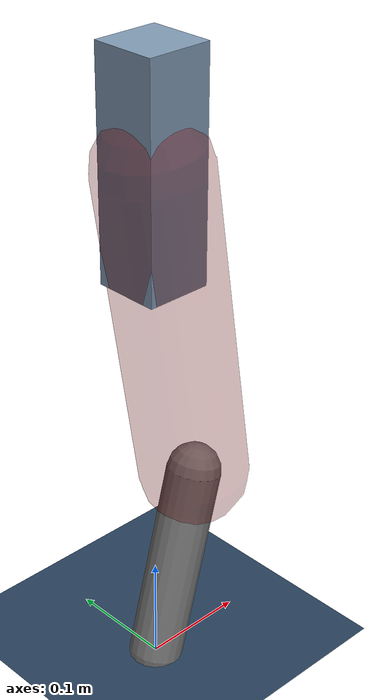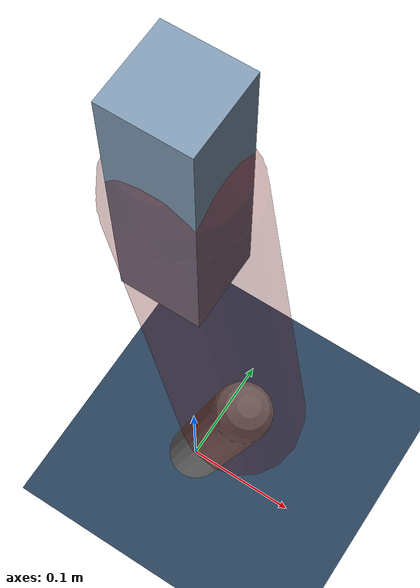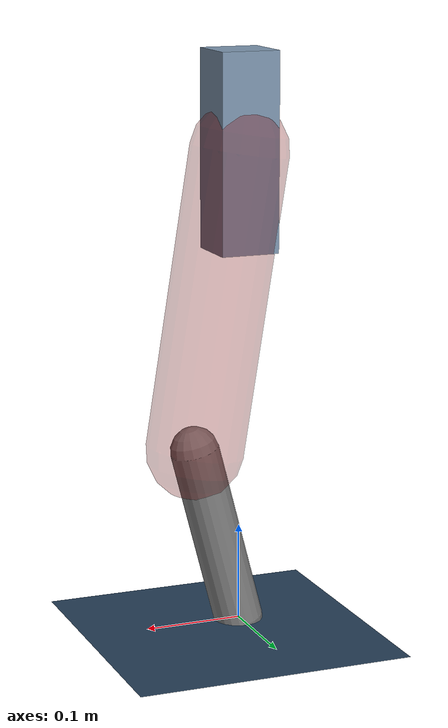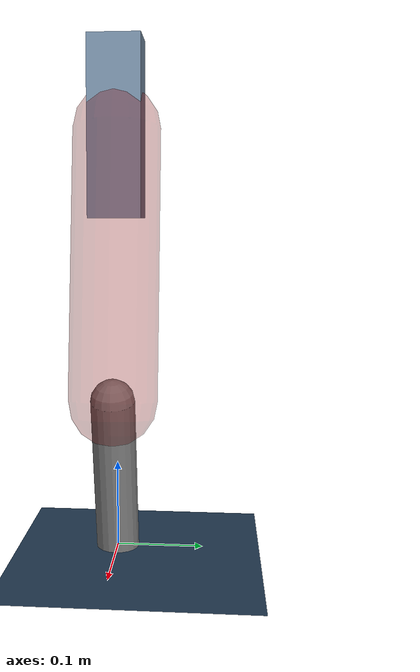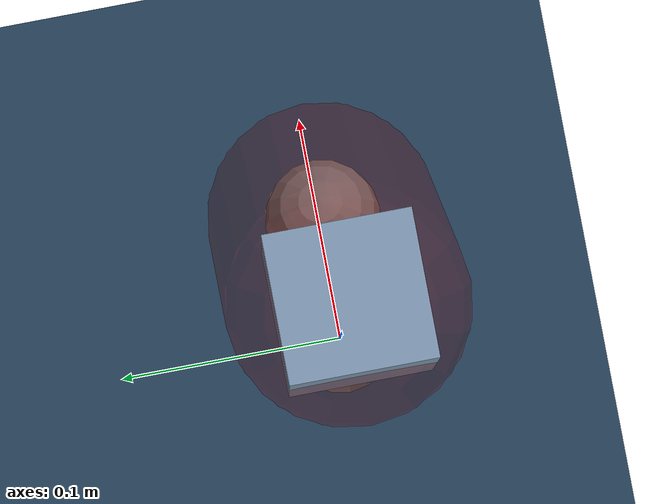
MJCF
<mujoco model="Hopper2D">
	<compiler inertiafromgeom="true" angle="radian" />
	<option timestep="0.001" integrator="implicit" cone="elliptic" solver="Newton" tolerance="1e-10" />

	<default>
		<geom contype="1" conaffinity="1" condim="3" friction="2 0.005 0.0001" solref="0.005 1" />
		<joint limited="true" damping="0.1" />
	</default>

	<asset>
		<texture name="skybox" type="skybox" builtin="gradient" rgb1=".4 .6 .8" rgb2="0 0 0" width="800" height="800" />
		<texture name="grid" type="2d" builtin="checker" rgb1=".1 .2 .3" rgb2=".2 .3 .4" width="300" height="300" mark="edge" markrgb=".2 .3 .4" />
		<material name="ground" texture="grid" texrepeat="1 1" texuniform="true" reflectance="0.1" />
		<material name="leg" rgba="0.5 0.6 0.7 1" />
	</asset>

	<worldbody>

		<geom name="floor" type="plane" size="5 5 0.25" material="ground" />

		<light directional="false" diffuse="0.8 0.8 0.8" specular="0.3 0.3 0.3" pos="0 0 2" dir="0 0 -1" />
		<light mode="targetbodycom" target="base" directional="false" diffuse="0.8 0.8 0.8" specular="0.3 0.3 0.3" pos="0 0 2" dir="0 0 -1" />

		<camera name="fixed" pos="0 -2 1" xyaxes="1 0 0 0 0 1" />
		<camera name="tracking" mode="trackcom" pos="0 -3 1" />

		<body name="root" pos="0 0 0.48621352352459785">
			<joint name="slide_x" type="slide" axis="1 0 0" range="-100 100" />
			<joint name="slide_z" type="slide" axis="0 0 1" range="0 10" />

			<body name="base" pos="0 0 0">
				<geom name="torso" type="box" size="0.03 0.03 0.1" mass="2.508" material="leg" />

				<body name="link1" pos="0 0 0" euler="0 1.4129294144824687 0">
					<joint type="hinge" axis="0 -1 0" pos="0 0 0" name="hinge1" limited="true" range="-3.14 3.14" stiffness="0" damping="0.1" />
					<geom name="thigh" type="capsule" fromto="0 0 0 0.30612594769099133 0 0" size="0.05" rgba="0.5 0 0 0.3" mass="1.0053400587656764" />

					<body name="link2" pos="0.30612594769099133 0 0" euler="0 0.41383449420228896 0">
						<joint type="hinge" axis="0 -1 0" pos="0 0 0" name="hinge2" limited="true" range="-3.14 3.14" stiffness="0" damping="0.1" />
						<geom name="shank" type="capsule" fromto="0 0 0 0.19008757583360653 0 0" size="0.025" mass="0.3924788182502459" />

					</body>
				</body>
			</body>
		</body>
	</worldbody>

	<actuator>
		<motor name="torque1" joint="hinge1" ctrlrange="-79.47827834370179 79.47827834370179" ctrllimited="true" gear="1" />
		<motor name="torque2" joint="hinge2" ctrlrange="-102.60295919109667 102.60295919109667" ctrllimited="true" gear="1" />
	</actuator>
</mujoco>
